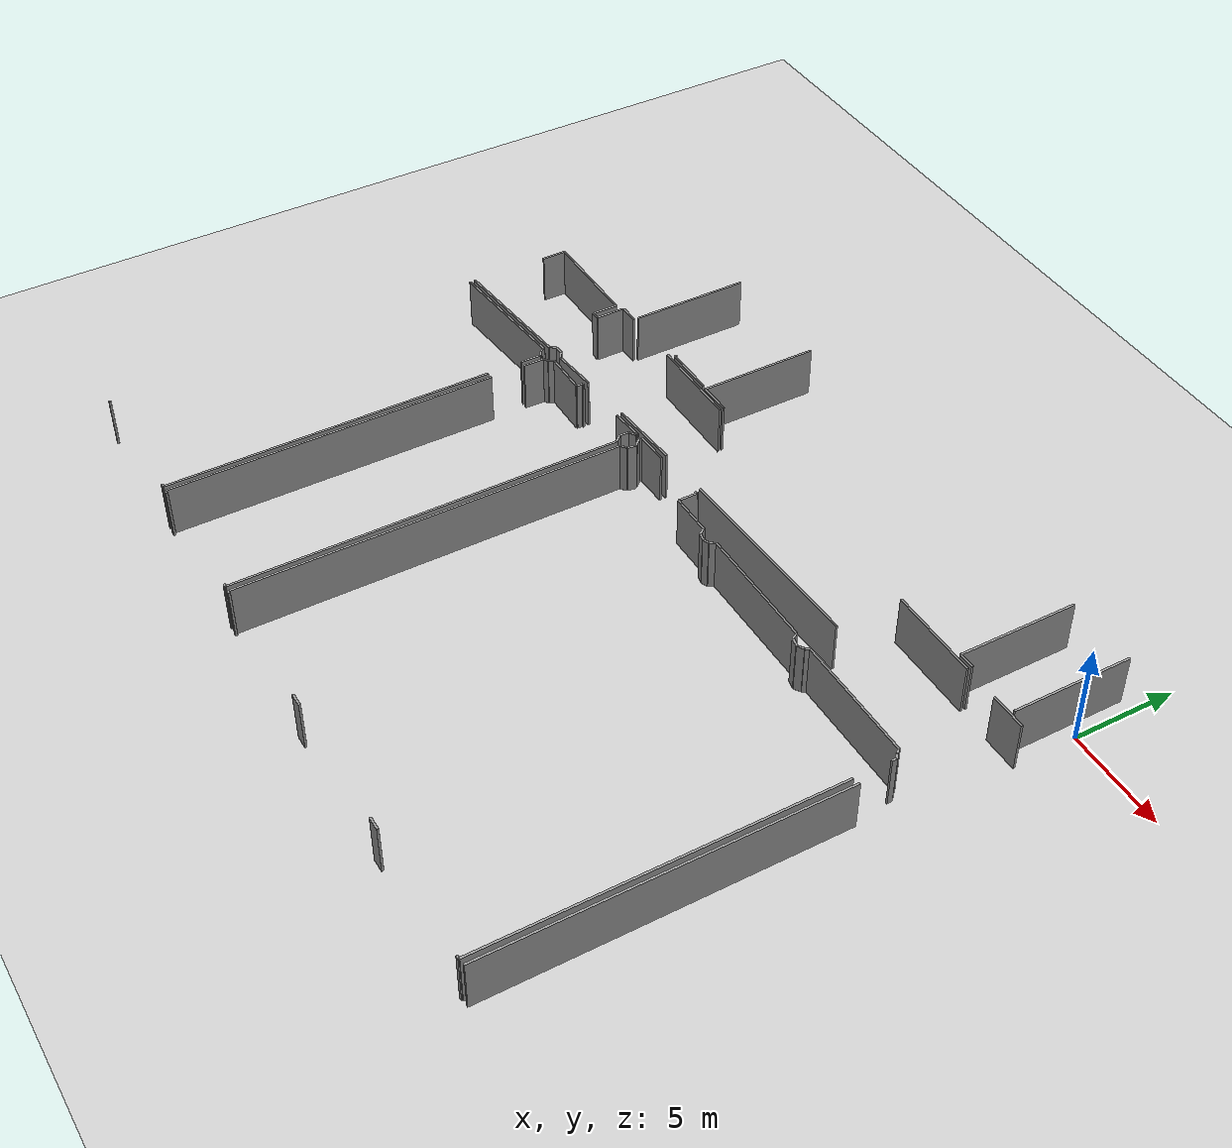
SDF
<sdf version="1.6">
 <world name="default">
  <model name="ground_plane">
   <static>1</static>
   <link name="link">
    <collision name="collision">
     <geometry><plane><normal>0 0 1</normal><size>100 100</size></plane></geometry>
     <surface><friction><ode><mu>100</mu><mu2>50</mu2></ode></friction></surface>
    </collision>
    <visual name="visual">
     <cast_shadows>0</cast_shadows>
     <geometry><plane><normal>0 0 1</normal><size>100 100</size></plane></geometry>
     <material>
      <script><uri>file://media/materials/scripts/gazebo.material</uri><name>Gazebo/Grey</name></script>
     </material>
    </visual>
   </link>
  </model>
  <model name="50041170">
   <static>1</static>
   <link name="Wall_257">
    <collision name="Wall_257_Collision">
     <geometry><box><size>0.410269429723 0.1 2.5</size></box></geometry>
     <pose>0.205134714861 0 1.25 0 0 0</pose>
    </collision>
    <visual name="Wall_257_Visual">
     <pose>0.205134714861 0 1.25 0 0 0</pose>
     <geometry><box><size>0.410269429723 0.1 2.5</size></box></geometry>
     <material>
      <script><uri>file://media/materials/scripts/gazebo.material</uri><name>Gazebo/Grey</name></script>
      <ambient>1 1 1 1</ambient>
     </material>
    </visual>
    <pose>35.0351305893 -31.5176287646 0 0 0 0.0</pose>
   </link>
   <link name="Wall_258">
    <collision name="Wall_258_Collision">
     <geometry><box><size>1.439116499 0.1 2.5</size></box></geometry>
     <pose>0.7195582495 0 1.25 0 0 0</pose>
    </collision>
    <visual name="Wall_258_Visual">
     <pose>0.7195582495 0 1.25 0 0 0</pose>
     <geometry><box><size>1.439116499 0.1 2.5</size></box></geometry>
     <material>
      <script><uri>file://media/materials/scripts/gazebo.material</uri><name>Gazebo/Grey</name></script>
      <ambient>1 1 1 1</ambient>
     </material>
    </visual>
    <pose>35.445400019 -31.5176287646 0 0 0 1.57079632679</pose>
   </link>
   <link name="Wall_259">
    <collision name="Wall_259_Collision">
     <geometry><box><size>0.978198089556 0.1 2.5</size></box></geometry>
     <pose>0.489099044778 0 1.25 0 0 0</pose>
    </collision>
    <visual name="Wall_259_Visual">
     <pose>0.489099044778 0 1.25 0 0 0</pose>
     <geometry><box><size>0.978198089556 0.1 2.5</size></box></geometry>
     <material>
      <script><uri>file://media/materials/scripts/gazebo.material</uri><name>Gazebo/Grey</name></script>
      <ambient>1 1 1 1</ambient>
     </material>
    </visual>
    <pose>35.445400019 -30.0785122656 0 0 0 0.0</pose>
   </link>
   <link name="Wall_260">
    <collision name="Wall_260_Collision">
     <geometry><box><size>4.66478372632 0.1 2.5</size></box></geometry>
     <pose>2.33239186316 0 1.25 0 0 0</pose>
    </collision>
    <visual name="Wall_260_Visual">
     <pose>2.33239186316 0 1.25 0 0 0</pose>
     <geometry><box><size>4.66478372632 0.1 2.5</size></box></geometry>
     <material>
      <script><uri>file://media/materials/scripts/gazebo.material</uri><name>Gazebo/Grey</name></script>
      <ambient>1 1 1 1</ambient>
     </material>
    </visual>
    <pose>39.5836374599 -30.0785122656 0 0 0 0.0</pose>
   </link>
   <link name="Wall_261">
    <collision name="Wall_261_Collision">
     <geometry><box><size>4.55713877694 0.1 2.5</size></box></geometry>
     <pose>2.27856938847 0 1.25 0 0 0</pose>
    </collision>
    <visual name="Wall_261_Visual">
     <pose>2.27856938847 0 1.25 0 0 0</pose>
     <geometry><box><size>4.55713877694 0.1 2.5</size></box></geometry>
     <material>
      <script><uri>file://media/materials/scripts/gazebo.material</uri><name>Gazebo/Grey</name></script>
      <ambient>1 1 1 1</ambient>
     </material>
    </visual>
    <pose>58.4122369966 -30.0785122656 0 0 0 0.0</pose>
   </link>
   <link name="Wall_262">
    <collision name="Wall_262_Collision">
     <geometry><box><size>1.7671289391 0.1 2.5</size></box></geometry>
     <pose>0.88356446955 0 1.25 0 0 0</pose>
    </collision>
    <visual name="Wall_262_Visual">
     <pose>0.88356446955 0 1.25 0 0 0</pose>
     <geometry><box><size>1.7671289391 0.1 2.5</size></box></geometry>
     <material>
      <script><uri>file://media/materials/scripts/gazebo.material</uri><name>Gazebo/Grey</name></script>
      <ambient>1 1 1 1</ambient>
     </material>
    </visual>
    <pose>64.7291422043 -30.0785122656 0 0 0 0.0</pose>
   </link>
   <link name="Wall_278">
    <collision name="Wall_278_Collision">
     <geometry><box><size>9.99468395729 0.1 2.5</size></box></geometry>
     <pose>4.99734197864 0 1.25 0 0 0</pose>
    </collision>
    <visual name="Wall_278_Visual">
     <pose>4.99734197864 0 1.25 0 0 0</pose>
     <geometry><box><size>9.99468395729 0.1 2.5</size></box></geometry>
     <material>
      <script><uri>file://media/materials/scripts/gazebo.material</uri><name>Gazebo/Grey</name></script>
      <ambient>1 1 1 1</ambient>
     </material>
    </visual>
    <pose>58.3976389197 -33.2614007807 0 0 0 -3.09776109586</pose>
   </link>
   <link name="Wall_279">
    <collision name="Wall_279_Collision">
     <geometry><box><size>3.58961421551 0.1 2.5</size></box></geometry>
     <pose>1.79480710776 0 1.25 0 0 0</pose>
    </collision>
    <visual name="Wall_279_Visual">
     <pose>1.79480710776 0 1.25 0 0 0</pose>
     <geometry><box><size>3.58961421551 0.1 2.5</size></box></geometry>
     <material>
      <script><uri>file://media/materials/scripts/gazebo.material</uri><name>Gazebo/Grey</name></script>
      <ambient>1 1 1 1</ambient>
     </material>
    </visual>
    <pose>45.7944209958 -33.8167624004 0 0 0 -3.06726176642</pose>
   </link>
   <link name="Wall_280">
    <collision name="Wall_280_Collision">
     <geometry><box><size>2.30417107276 0.1 2.5</size></box></geometry>
     <pose>1.15208553638 0 1.25 0 0 0</pose>
    </collision>
    <visual name="Wall_280_Visual">
     <pose>1.15208553638 0 1.25 0 0 0</pose>
     <geometry><box><size>2.30417107276 0.1 2.5</size></box></geometry>
     <material>
      <script><uri>file://media/materials/scripts/gazebo.material</uri><name>Gazebo/Grey</name></script>
      <ambient>1 1 1 1</ambient>
     </material>
    </visual>
    <pose>39.5743708546 -34.3118276158 0 0 0 -3.04326155827</pose>
   </link>
   <link name="Wall_281">
    <collision name="Wall_281_Collision">
     <geometry><box><size>0.396578967902 0.1 2.5</size></box></geometry>
     <pose>0.198289483951 0 1.25 0 0 0</pose>
    </collision>
    <visual name="Wall_281_Visual">
     <pose>0.198289483951 0 1.25 0 0 0</pose>
     <geometry><box><size>0.396578967902 0.1 2.5</size></box></geometry>
     <material>
      <script><uri>file://media/materials/scripts/gazebo.material</uri><name>Gazebo/Grey</name></script>
      <ambient>1 1 1 1</ambient>
     </material>
    </visual>
    <pose>37.2813303291 -34.5380343372 0 0 0 2.53849752656</pose>
   </link>
   <link name="Wall_282">
    <collision name="Wall_282_Collision">
     <geometry><box><size>0.435590548628 0.1 2.5</size></box></geometry>
     <pose>0.217795274314 0 1.25 0 0 0</pose>
    </collision>
    <visual name="Wall_282_Visual">
     <pose>0.217795274314 0 1.25 0 0 0</pose>
     <geometry><box><size>0.435590548628 0.1 2.5</size></box></geometry>
     <material>
      <script><uri>file://media/materials/scripts/gazebo.material</uri><name>Gazebo/Grey</name></script>
      <ambient>1 1 1 1</ambient>
     </material>
    </visual>
    <pose>36.9547142268 -34.3130970137 0 0 0 -3.12498094946</pose>
   </link>
   <link name="Wall_283">
    <collision name="Wall_283_Collision">
     <geometry><box><size>0.354304623857 0.1 2.5</size></box></geometry>
     <pose>0.177152311929 0 1.25 0 0 0</pose>
    </collision>
    <visual name="Wall_283_Visual">
     <pose>0.177152311929 0 1.25 0 0 0</pose>
     <geometry><box><size>0.354304623857 0.1 2.5</size></box></geometry>
     <material>
      <script><uri>file://media/materials/scripts/gazebo.material</uri><name>Gazebo/Grey</name></script>
      <ambient>1 1 1 1</ambient>
     </material>
    </visual>
    <pose>36.5191837771 -34.3203325823 0 0 0 -2.18125812917</pose>
   </link>
   <link name="Wall_284">
    <collision name="Wall_284_Collision">
     <geometry><box><size>6.53240830852 0.1 2.5</size></box></geometry>
     <pose>3.26620415426 0 1.25 0 0 0</pose>
    </collision>
    <visual name="Wall_284_Visual">
     <pose>3.26620415426 0 1.25 0 0 0</pose>
     <geometry><box><size>6.53240830852 0.1 2.5</size></box></geometry>
     <material>
      <script><uri>file://media/materials/scripts/gazebo.material</uri><name>Gazebo/Grey</name></script>
      <ambient>1 1 1 1</ambient>
     </material>
    </visual>
    <pose>36.316080099 -34.6106439021 0 0 0 -3.0472839309</pose>
   </link>
   <link name="Wall_308">
    <collision name="Wall_308_Collision">
     <geometry><box><size>16.7347275555 0.1 2.5</size></box></geometry>
     <pose>8.36736377773 0 1.25 0 0 0</pose>
    </collision>
    <visual name="Wall_308_Visual">
     <pose>8.36736377773 0 1.25 0 0 0</pose>
     <geometry><box><size>16.7347275555 0.1 2.5</size></box></geometry>
     <material>
      <script><uri>file://media/materials/scripts/gazebo.material</uri><name>Gazebo/Grey</name></script>
      <ambient>1 1 1 1</ambient>
     </material>
    </visual>
    <pose>65.7842658119 -53.9197105773 0 0 0 1.57079632679</pose>
   </link>
   <link name="Wall_332">
    <collision name="Wall_332_Collision">
     <geometry><box><size>0.163244581257 0.1 2.5</size></box></geometry>
     <pose>0.0816222906287 0 1.25 0 0 0</pose>
    </collision>
    <visual name="Wall_332_Visual">
     <pose>0.0816222906287 0 1.25 0 0 0</pose>
     <geometry><box><size>0.163244581257 0.1 2.5</size></box></geometry>
     <material>
      <script><uri>file://media/materials/scripts/gazebo.material</uri><name>Gazebo/Grey</name></script>
      <ambient>1 1 1 1</ambient>
     </material>
    </visual>
    <pose>65.4707245089 -53.9409095237 0 0 0 3.14159265359</pose>
   </link>
   <link name="Wall_333">
    <collision name="Wall_333_Collision">
     <geometry><box><size>0.64764685348 0.1 2.5</size></box></geometry>
     <pose>0.32382342674 0 1.25 0 0 0</pose>
    </collision>
    <visual name="Wall_333_Visual">
     <pose>0.32382342674 0 1.25 0 0 0</pose>
     <geometry><box><size>0.64764685348 0.1 2.5</size></box></geometry>
     <material>
      <script><uri>file://media/materials/scripts/gazebo.material</uri><name>Gazebo/Grey</name></script>
      <ambient>1 1 1 1</ambient>
     </material>
    </visual>
    <pose>58.7596712259 -53.9409095237 0 0 0 3.14159265359</pose>
   </link>
   <link name="Wall_334">
    <collision name="Wall_334_Collision">
     <geometry><box><size>0.639522706357 0.1 2.5</size></box></geometry>
     <pose>0.319761353178 0 1.25 0 0 0</pose>
    </collision>
    <visual name="Wall_334_Visual">
     <pose>0.319761353178 0 1.25 0 0 0</pose>
     <geometry><box><size>0.639522706357 0.1 2.5</size></box></geometry>
     <material>
      <script><uri>file://media/materials/scripts/gazebo.material</uri><name>Gazebo/Grey</name></script>
      <ambient>1 1 1 1</ambient>
     </material>
    </visual>
    <pose>51.5563454032 -53.9409095237 0 0 0 3.14159265359</pose>
   </link>
   <link name="Wall_335">
    <collision name="Wall_335_Collision">
     <geometry><box><size>0.148011805401 0.1 2.5</size></box></geometry>
     <pose>0.0740059027006 0 1.25 0 0 0</pose>
    </collision>
    <visual name="Wall_335_Visual">
     <pose>0.0740059027006 0 1.25 0 0 0</pose>
     <geometry><box><size>0.148011805401 0.1 2.5</size></box></geometry>
     <material>
      <script><uri>file://media/materials/scripts/gazebo.material</uri><name>Gazebo/Grey</name></script>
      <ambient>1 1 1 1</ambient>
     </material>
    </visual>
    <pose>44.337532925 -53.9409095237 0 0 0 3.14159265359</pose>
   </link>
   <link name="Wall_336">
    <collision name="Wall_336_Collision">
     <geometry><box><size>18.6619275808 0.1 2.5</size></box></geometry>
     <pose>9.33096379042 0 1.25 0 0 0</pose>
    </collision>
    <visual name="Wall_336_Visual">
     <pose>9.33096379042 0 1.25 0 0 0</pose>
     <geometry><box><size>18.6619275808 0.1 2.5</size></box></geometry>
     <material>
      <script><uri>file://media/materials/scripts/gazebo.material</uri><name>Gazebo/Grey</name></script>
      <ambient>1 1 1 1</ambient>
     </material>
    </visual>
    <pose>44.1895211196 -53.9409095237 0 0 0 1.57079632679</pose>
   </link>
   <link name="Wall_337">
    <collision name="Wall_337_Collision">
     <geometry><box><size>0.347628758682 0.1 2.5</size></box></geometry>
     <pose>0.173814379341 0 1.25 0 0 0</pose>
    </collision>
    <visual name="Wall_337_Visual">
     <pose>0.173814379341 0 1.25 0 0 0</pose>
     <geometry><box><size>0.347628758682 0.1 2.5</size></box></geometry>
     <material>
      <script><uri>file://media/materials/scripts/gazebo.material</uri><name>Gazebo/Grey</name></script>
      <ambient>1 1 1 1</ambient>
     </material>
    </visual>
    <pose>44.1895211196 -35.2789819428 0 0 0 0.663220977347</pose>
   </link>
   <link name="Wall_338">
    <collision name="Wall_338_Collision">
     <geometry><box><size>0.423180812426 0.1 2.5</size></box></geometry>
     <pose>0.211590406213 0 1.25 0 0 0</pose>
    </collision>
    <visual name="Wall_338_Visual">
     <pose>0.211590406213 0 1.25 0 0 0</pose>
     <geometry><box><size>0.423180812426 0.1 2.5</size></box></geometry>
     <material>
      <script><uri>file://media/materials/scripts/gazebo.material</uri><name>Gazebo/Grey</name></script>
      <ambient>1 1 1 1</ambient>
     </material>
    </visual>
    <pose>44.4634572054 -35.064961442 0 0 0 1.40140662539</pose>
   </link>
   <link name="Wall_339">
    <collision name="Wall_339_Collision">
     <geometry><box><size>0.488985039354 0.1 2.5</size></box></geometry>
     <pose>0.244492519677 0 1.25 0 0 0</pose>
    </collision>
    <visual name="Wall_339_Visual">
     <pose>0.244492519677 0 1.25 0 0 0</pose>
     <geometry><box><size>0.488985039354 0.1 2.5</size></box></geometry>
     <material>
      <script><uri>file://media/materials/scripts/gazebo.material</uri><name>Gazebo/Grey</name></script>
      <ambient>1 1 1 1</ambient>
     </material>
    </visual>
    <pose>44.5347973723 -34.6478372632 0 0 0 2.34022375346</pose>
   </link>
   <link name="Wall_340">
    <collision name="Wall_340_Collision">
     <geometry><box><size>0.148239273082 0.1 2.5</size></box></geometry>
     <pose>0.074119636541 0 1.25 0 0 0</pose>
    </collision>
    <visual name="Wall_340_Visual">
     <pose>0.074119636541 0 1.25 0 0 0</pose>
     <geometry><box><size>0.148239273082 0.1 2.5</size></box></geometry>
     <material>
      <script><uri>file://media/materials/scripts/gazebo.material</uri><name>Gazebo/Grey</name></script>
      <ambient>1 1 1 1</ambient>
     </material>
    </visual>
    <pose>44.1945987116 -34.2965948399 0 0 0 1.6076262804</pose>
   </link>
   <link name="Wall_341">
    <collision name="Wall_341_Collision">
     <geometry><box><size>1.61945895431 0.1 2.5</size></box></geometry>
     <pose>0.809729477154 0 1.25 0 0 0</pose>
    </collision>
    <visual name="Wall_341_Visual">
     <pose>0.809729477154 0 1.25 0 0 0</pose>
     <geometry><box><size>1.61945895431 0.1 2.5</size></box></geometry>
     <material>
      <script><uri>file://media/materials/scripts/gazebo.material</uri><name>Gazebo/Grey</name></script>
      <ambient>1 1 1 1</ambient>
     </material>
    </visual>
    <pose>44.1891403002 -34.1484560947 0 0 0 0.0271242172378</pose>
   </link>
   <link name="Wall_342">
    <collision name="Wall_342_Collision">
     <geometry><box><size>0.147399846667 0.1 2.5</size></box></geometry>
     <pose>0.0736999233334 0 1.25 0 0 0</pose>
    </collision>
    <visual name="Wall_342_Visual">
     <pose>0.0736999233334 0 1.25 0 0 0</pose>
     <geometry><box><size>0.147399846667 0.1 2.5</size></box></geometry>
     <material>
      <script><uri>file://media/materials/scripts/gazebo.material</uri><name>Gazebo/Grey</name></script>
      <ambient>1 1 1 1</ambient>
     </material>
    </visual>
    <pose>48.4715813525 -33.9852115134 0 0 0 0.172227704002</pose>
   </link>
   <link name="Wall_343">
    <collision name="Wall_343_Collision">
     <geometry><box><size>0.934023039573 0.1 2.5</size></box></geometry>
     <pose>0.467011519787 0 1.25 0 0 0</pose>
    </collision>
    <visual name="Wall_343_Visual">
     <pose>0.467011519787 0 1.25 0 0 0</pose>
     <geometry><box><size>0.934023039573 0.1 2.5</size></box></geometry>
     <material>
      <script><uri>file://media/materials/scripts/gazebo.material</uri><name>Gazebo/Grey</name></script>
      <ambient>1 1 1 1</ambient>
     </material>
    </visual>
    <pose>48.6168004824 -33.9599504935 0 0 0 -1.57079632679</pose>
   </link>
   <link name="Wall_344">
    <collision name="Wall_344_Collision">
     <geometry><box><size>2.10161530894 0.1 2.5</size></box></geometry>
     <pose>1.05080765447 0 1.25 0 0 0</pose>
    </collision>
    <visual name="Wall_344_Visual">
     <pose>1.05080765447 0 1.25 0 0 0</pose>
     <geometry><box><size>2.10161530894 0.1 2.5</size></box></geometry>
     <material>
      <script><uri>file://media/materials/scripts/gazebo.material</uri><name>Gazebo/Grey</name></script>
      <ambient>1 1 1 1</ambient>
     </material>
    </visual>
    <pose>48.6168004824 -34.8939735331 0 0 0 0.0</pose>
   </link>
   <link name="Wall_345">
    <collision name="Wall_345_Collision">
     <geometry><box><size>0.33784910002 0.1 2.5</size></box></geometry>
     <pose>0.16892455001 0 1.25 0 0 0</pose>
    </collision>
    <visual name="Wall_345_Visual">
     <pose>0.16892455001 0 1.25 0 0 0</pose>
     <geometry><box><size>0.33784910002 0.1 2.5</size></box></geometry>
     <material>
      <script><uri>file://media/materials/scripts/gazebo.material</uri><name>Gazebo/Grey</name></script>
      <ambient>1 1 1 1</ambient>
     </material>
    </visual>
    <pose>50.7184157913 -34.8939735331 0 0 0 -0.998217200498</pose>
   </link>
   <link name="Wall_346">
    <collision name="Wall_346_Collision">
     <geometry><box><size>0.410214753988 0.1 2.5</size></box></geometry>
     <pose>0.205107376994 0 1.25 0 0 0</pose>
    </collision>
    <visual name="Wall_346_Visual">
     <pose>0.205107376994 0 1.25 0 0 0</pose>
     <geometry><box><size>0.410214753988 0.1 2.5</size></box></geometry>
     <material>
      <script><uri>file://media/materials/scripts/gazebo.material</uri><name>Gazebo/Grey</name></script>
      <ambient>1 1 1 1</ambient>
     </material>
    </visual>
    <pose>50.9014629812 -35.177937863 0 0 0 -0.248881375225</pose>
   </link>
   <link name="Wall_347">
    <collision name="Wall_347_Collision">
     <geometry><box><size>0.302425752175 0.1 2.5</size></box></geometry>
     <pose>0.151212876087 0 1.25 0 0 0</pose>
    </collision>
    <visual name="Wall_347_Visual">
     <pose>0.151212876087 0 1.25 0 0 0</pose>
     <geometry><box><size>0.302425752175 0.1 2.5</size></box></geometry>
     <material>
      <script><uri>file://media/materials/scripts/gazebo.material</uri><name>Gazebo/Grey</name></script>
      <ambient>1 1 1 1</ambient>
     </material>
    </visual>
    <pose>51.299038431 -35.2789819428 0 0 0 0.407867967974</pose>
   </link>
   <link name="Wall_348">
    <collision name="Wall_348_Collision">
     <geometry><box><size>0.308460916307 0.1 2.5</size></box></geometry>
     <pose>0.154230458154 0 1.25 0 0 0</pose>
    </collision>
    <visual name="Wall_348_Visual">
     <pose>0.154230458154 0 1.25 0 0 0</pose>
     <geometry><box><size>0.308460916307 0.1 2.5</size></box></geometry>
     <material>
      <script><uri>file://media/materials/scripts/gazebo.material</uri><name>Gazebo/Grey</name></script>
      <ambient>1 1 1 1</ambient>
     </material>
    </visual>
    <pose>51.576655771 -35.1590238329 0 0 0 1.03383506667</pose>
   </link>
   <link name="Wall_349">
    <collision name="Wall_349_Collision">
     <geometry><box><size>6.18311065977 0.1 2.5</size></box></geometry>
     <pose>3.09155532988 0 1.25 0 0 0</pose>
    </collision>
    <visual name="Wall_349_Visual">
     <pose>3.09155532988 0 1.25 0 0 0</pose>
     <geometry><box><size>6.18311065977 0.1 2.5</size></box></geometry>
     <material>
      <script><uri>file://media/materials/scripts/gazebo.material</uri><name>Gazebo/Grey</name></script>
      <ambient>1 1 1 1</ambient>
     </material>
    </visual>
    <pose>51.7344419409 -34.8939735331 0 0 0 0.0</pose>
   </link>
   <link name="Wall_350">
    <collision name="Wall_350_Collision">
     <geometry><box><size>0.347568494271 0.1 2.5</size></box></geometry>
     <pose>0.173784247136 0 1.25 0 0 0</pose>
    </collision>
    <visual name="Wall_350_Visual">
     <pose>0.173784247136 0 1.25 0 0 0</pose>
     <geometry><box><size>0.347568494271 0.1 2.5</size></box></geometry>
     <material>
      <script><uri>file://media/materials/scripts/gazebo.material</uri><name>Gazebo/Grey</name></script>
      <ambient>1 1 1 1</ambient>
     </material>
    </visual>
    <pose>57.9175526007 -34.8939735331 0 0 0 -0.989276614597</pose>
   </link>
   <link name="Wall_351">
    <collision name="Wall_351_Collision">
     <geometry><box><size>0.409983971161 0.1 2.5</size></box></geometry>
     <pose>0.20499198558 0 1.25 0 0 0</pose>
    </collision>
    <visual name="Wall_351_Visual">
     <pose>0.20499198558 0 1.25 0 0 0</pose>
     <geometry><box><size>0.409983971161 0.1 2.5</size></box></geometry>
     <material>
      <script><uri>file://media/materials/scripts/gazebo.material</uri><name>Gazebo/Grey</name></script>
      <ambient>1 1 1 1</ambient>
     </material>
    </visual>
    <pose>58.1084700581 -35.1844117927 0 0 0 -0.211179832801</pose>
   </link>
   <link name="Wall_352">
    <collision name="Wall_352_Collision">
     <geometry><box><size>0.354710821474 0.1 2.5</size></box></geometry>
     <pose>0.177355410737 0 1.25 0 0 0</pose>
    </collision>
    <visual name="Wall_352_Visual">
     <pose>0.177355410737 0 1.25 0 0 0</pose>
     <geometry><box><size>0.354710821474 0.1 2.5</size></box></geometry>
     <material>
      <script><uri>file://media/materials/scripts/gazebo.material</uri><name>Gazebo/Grey</name></script>
      <ambient>1 1 1 1</ambient>
     </material>
    </visual>
    <pose>58.5093459427 -35.2703500365 0 0 0 0.58413165514</pose>
   </link>
   <link name="Wall_353">
    <collision name="Wall_353_Collision">
     <geometry><box><size>0.209163394737 0.1 2.5</size></box></geometry>
     <pose>0.104581697368 0 1.25 0 0 0</pose>
    </collision>
    <visual name="Wall_353_Visual">
     <pose>0.104581697368 0 1.25 0 0 0</pose>
     <geometry><box><size>0.209163394737 0.1 2.5</size></box></geometry>
     <material>
      <script><uri>file://media/materials/scripts/gazebo.material</uri><name>Gazebo/Grey</name></script>
      <ambient>1 1 1 1</ambient>
     </material>
    </visual>
    <pose>58.8052426137 -35.0747358065 0 0 0 0.964445614157</pose>
   </link>
   <link name="Wall_354">
    <collision name="Wall_354_Collision">
     <geometry><box><size>6.17079749929 0.1 2.5</size></box></geometry>
     <pose>3.08539874964 0 1.25 0 0 0</pose>
    </collision>
    <visual name="Wall_354_Visual">
     <pose>3.08539874964 0 1.25 0 0 0</pose>
     <geometry><box><size>6.17079749929 0.1 2.5</size></box></geometry>
     <material>
      <script><uri>file://media/materials/scripts/gazebo.material</uri><name>Gazebo/Grey</name></script>
      <ambient>1 1 1 1</ambient>
     </material>
    </visual>
    <pose>58.9244390848 -34.902859319 0 0 0 0.0</pose>
   </link>
   <link name="Wall_355">
    <collision name="Wall_355_Collision">
     <geometry><box><size>0.2553872596 0.1 2.5</size></box></geometry>
     <pose>0.1276936298 0 1.25 0 0 0</pose>
    </collision>
    <visual name="Wall_355_Visual">
     <pose>0.1276936298 0 1.25 0 0 0</pose>
     <geometry><box><size>0.2553872596 0.1 2.5</size></box></geometry>
     <material>
      <script><uri>file://media/materials/scripts/gazebo.material</uri><name>Gazebo/Grey</name></script>
      <ambient>1 1 1 1</ambient>
     </material>
    </visual>
    <pose>65.0952365841 -34.902859319 0 0 0 -0.936043379359</pose>
   </link>
   <link name="Wall_356">
    <collision name="Wall_356_Collision">
     <geometry><box><size>0.253930907829 0.1 2.5</size></box></geometry>
     <pose>0.126965453915 0 1.25 0 0 0</pose>
    </collision>
    <visual name="Wall_356_Visual">
     <pose>0.126965453915 0 1.25 0 0 0</pose>
     <geometry><box><size>0.253930907829 0.1 2.5</size></box></geometry>
     <material>
      <script><uri>file://media/materials/scripts/gazebo.material</uri><name>Gazebo/Grey</name></script>
      <ambient>1 1 1 1</ambient>
     </material>
    </visual>
    <pose>65.246675764 -35.108501793 0 0 0 -0.6088011572</pose>
   </link>
   <link name="Wall_357">
    <collision name="Wall_357_Collision">
     <geometry><box><size>0.239789279934 0.1 2.5</size></box></geometry>
     <pose>0.119894639967 0 1.25 0 0 0</pose>
    </collision>
    <visual name="Wall_357_Visual">
     <pose>0.119894639967 0 1.25 0 0 0</pose>
     <geometry><box><size>0.239789279934 0.1 2.5</size></box></geometry>
     <material>
      <script><uri>file://media/materials/scripts/gazebo.material</uri><name>Gazebo/Grey</name></script>
      <ambient>1 1 1 1</ambient>
     </material>
    </visual>
    <pose>65.4549839739 -35.2537209229 0 0 0 -1.57079632679</pose>
   </link>
   <link name="Wall_358">
    <collision name="Wall_358_Collision">
     <geometry><box><size>16.6614907268 0.1 2.5</size></box></geometry>
     <pose>8.3307453634 0 1.25 0 0 0</pose>
    </collision>
    <visual name="Wall_358_Visual">
     <pose>8.3307453634 0 1.25 0 0 0</pose>
     <geometry><box><size>16.6614907268 0.1 2.5</size></box></geometry>
     <material>
      <script><uri>file://media/materials/scripts/gazebo.material</uri><name>Gazebo/Grey</name></script>
      <ambient>1 1 1 1</ambient>
     </material>
    </visual>
    <pose>65.4549839739 -37.2794262321 0 0 0 -1.56985160116</pose>
   </link>
   <link name="Wall_359">
    <collision name="Wall_359_Collision">
     <geometry><box><size>0.166925835423 0.1 2.5</size></box></geometry>
     <pose>0.0834629177113 0 1.25 0 0 0</pose>
    </collision>
    <visual name="Wall_359_Visual">
     <pose>0.0834629177113 0 1.25 0 0 0</pose>
     <geometry><box><size>0.166925835423 0.1 2.5</size></box></geometry>
     <material>
      <script><uri>file://media/materials/scripts/gazebo.material</uri><name>Gazebo/Grey</name></script>
      <ambient>1 1 1 1</ambient>
     </material>
    </visual>
    <pose>43.8786455523 -53.923645711 0 0 0 3.14159265359</pose>
   </link>
   <link name="Wall_360">
    <collision name="Wall_360_Collision">
     <geometry><box><size>0.197518326933 0.1 2.5</size></box></geometry>
     <pose>0.0987591634667 0 1.25 0 0 0</pose>
    </collision>
    <visual name="Wall_360_Visual">
     <pose>0.0987591634667 0 1.25 0 0 0</pose>
     <geometry><box><size>0.197518326933 0.1 2.5</size></box></geometry>
     <material>
      <script><uri>file://media/materials/scripts/gazebo.material</uri><name>Gazebo/Grey</name></script>
      <ambient>1 1 1 1</ambient>
     </material>
    </visual>
    <pose>37.1754625369 -53.923645711 0 0 0 3.14159265359</pose>
   </link>
   <link name="Wall_361">
    <collision name="Wall_361_Collision">
     <geometry><box><size>15.9178699502 0.1 2.5</size></box></geometry>
     <pose>7.95893497509 0 1.25 0 0 0</pose>
    </collision>
    <visual name="Wall_361_Visual">
     <pose>7.95893497509 0 1.25 0 0 0</pose>
     <geometry><box><size>15.9178699502 0.1 2.5</size></box></geometry>
     <material>
      <script><uri>file://media/materials/scripts/gazebo.material</uri><name>Gazebo/Grey</name></script>
      <ambient>1 1 1 1</ambient>
     </material>
    </visual>
    <pose>36.97794421 -53.923645711 0 0 0 1.57079632679</pose>
   </link>
   <link name="Wall_362">
    <collision name="Wall_362_Collision">
     <geometry><box><size>1.01145631684 0.1 2.5</size></box></geometry>
     <pose>0.505728158421 0 1.25 0 0 0</pose>
    </collision>
    <visual name="Wall_362_Visual">
     <pose>0.505728158421 0 1.25 0 0 0</pose>
     <geometry><box><size>1.01145631684 0.1 2.5</size></box></geometry>
     <material>
      <script><uri>file://media/materials/scripts/gazebo.material</uri><name>Gazebo/Grey</name></script>
      <ambient>1 1 1 1</ambient>
     </material>
    </visual>
    <pose>36.97794421 -36.2970391292 0 0 0 1.57079632679</pose>
   </link>
   <link name="Wall_363">
    <collision name="Wall_363_Collision">
     <geometry><box><size>0.272665387692 0.1 2.5</size></box></geometry>
     <pose>0.136332693846 0 1.25 0 0 0</pose>
    </collision>
    <visual name="Wall_363_Visual">
     <pose>0.136332693846 0 1.25 0 0 0</pose>
     <geometry><box><size>0.272665387692 0.1 2.5</size></box></geometry>
     <material>
      <script><uri>file://media/materials/scripts/gazebo.material</uri><name>Gazebo/Grey</name></script>
      <ambient>1 1 1 1</ambient>
     </material>
    </visual>
    <pose>36.97794421 -35.2855828124 0 0 0 0.561658918903</pose>
   </link>
   <link name="Wall_364">
    <collision name="Wall_364_Collision">
     <geometry><box><size>0.285624194563 0.1 2.5</size></box></geometry>
     <pose>0.142812097281 0 1.25 0 0 0</pose>
    </collision>
    <visual name="Wall_364_Visual">
     <pose>0.142812097281 0 1.25 0 0 0</pose>
     <geometry><box><size>0.285624194563 0.1 2.5</size></box></geometry>
     <material>
      <script><uri>file://media/materials/scripts/gazebo.material</uri><name>Gazebo/Grey</name></script>
      <ambient>1 1 1 1</ambient>
     </material>
    </visual>
    <pose>37.2087207642 -35.1403636825 0 0 0 1.09581944702</pose>
   </link>
   <link name="Wall_365">
    <collision name="Wall_365_Collision">
     <geometry><box><size>2.16297649403 0.1 2.5</size></box></geometry>
     <pose>1.08148824702 0 1.25 0 0 0</pose>
    </collision>
    <visual name="Wall_365_Visual">
     <pose>1.08148824702 0 1.25 0 0 0</pose>
     <geometry><box><size>2.16297649403 0.1 2.5</size></box></geometry>
     <material>
      <script><uri>file://media/materials/scripts/gazebo.material</uri><name>Gazebo/Grey</name></script>
      <ambient>1 1 1 1</ambient>
     </material>
    </visual>
    <pose>37.3393418171 -34.8863571451 0 0 0 -0.00674911989481</pose>
   </link>
   <link name="Wall_366">
    <collision name="Wall_366_Collision">
     <geometry><box><size>0.29872238794 0.1 2.5</size></box></geometry>
     <pose>0.14936119397 0 1.25 0 0 0</pose>
    </collision>
    <visual name="Wall_366_Visual">
     <pose>0.14936119397 0 1.25 0 0 0</pose>
     <geometry><box><size>0.29872238794 0.1 2.5</size></box></geometry>
     <material>
      <script><uri>file://media/materials/scripts/gazebo.material</uri><name>Gazebo/Grey</name></script>
      <ambient>1 1 1 1</ambient>
     </material>
    </visual>
    <pose>39.5022690489 -34.900955222 0 0 0 1.55592279554</pose>
   </link>
   <link name="Wall_367">
    <collision name="Wall_367_Collision">
     <geometry><box><size>0.115394700727 0.1 2.5</size></box></geometry>
     <pose>0.0576973503635 0 1.25 0 0 0</pose>
    </collision>
    <visual name="Wall_367_Visual">
     <pose>0.0576973503635 0 1.25 0 0 0</pose>
     <geometry><box><size>0.115394700727 0.1 2.5</size></box></geometry>
     <material>
      <script><uri>file://media/materials/scripts/gazebo.material</uri><name>Gazebo/Grey</name></script>
      <ambient>1 1 1 1</ambient>
     </material>
    </visual>
    <pose>39.5067119419 -34.6022658754 0 0 0 0.124627883065</pose>
   </link>
   <link name="Wall_368">
    <collision name="Wall_368_Collision">
     <geometry><box><size>1.61122809962 0.1 2.5</size></box></geometry>
     <pose>0.805614049808 0 1.25 0 0 0</pose>
    </collision>
    <visual name="Wall_368_Visual">
     <pose>0.805614049808 0 1.25 0 0 0</pose>
     <geometry><box><size>1.61122809962 0.1 2.5</size></box></geometry>
     <material>
      <script><uri>file://media/materials/scripts/gazebo.material</uri><name>Gazebo/Grey</name></script>
      <ambient>1 1 1 1</ambient>
     </material>
    </visual>
    <pose>42.2673986862 -34.3420392879 0 0 0 0.094682804812</pose>
   </link>
   <link name="Wall_369">
    <collision name="Wall_369_Collision">
     <geometry><box><size>0.0870807019771 0.1 2.5</size></box></geometry>
     <pose>0.0435403509885 0 1.25 0 0 0</pose>
    </collision>
    <visual name="Wall_369_Visual">
     <pose>0.0435403509885 0 1.25 0 0 0</pose>
     <geometry><box><size>0.0870807019771 0.1 2.5</size></box></geometry>
     <material>
      <script><uri>file://media/materials/scripts/gazebo.material</uri><name>Gazebo/Grey</name></script>
      <ambient>1 1 1 1</ambient>
     </material>
    </visual>
    <pose>43.8714099838 -34.1897115293 0 0 0 -1.57079632679</pose>
   </link>
   <link name="Wall_370">
    <collision name="Wall_370_Collision">
     <geometry><box><size>0.362870109739 0.1 2.5</size></box></geometry>
     <pose>0.181435054869 0 1.25 0 0 0</pose>
    </collision>
    <visual name="Wall_370_Visual">
     <pose>0.181435054869 0 1.25 0 0 0</pose>
     <geometry><box><size>0.362870109739 0.1 2.5</size></box></geometry>
     <material>
      <script><uri>file://media/materials/scripts/gazebo.material</uri><name>Gazebo/Grey</name></script>
      <ambient>1 1 1 1</ambient>
     </material>
    </visual>
    <pose>43.8714099838 -34.2767922313 0 0 0 -2.49816150911</pose>
   </link>
   <link name="Wall_371">
    <collision name="Wall_371_Collision">
     <geometry><box><size>0.421934925893 0.1 2.5</size></box></geometry>
     <pose>0.210967462946 0 1.25 0 0 0</pose>
    </collision>
    <visual name="Wall_371_Visual">
     <pose>0.210967462946 0 1.25 0 0 0</pose>
     <geometry><box><size>0.421934925893 0.1 2.5</size></box></geometry>
     <material>
      <script><uri>file://media/materials/scripts/gazebo.material</uri><name>Gazebo/Grey</name></script>
      <ambient>1 1 1 1</ambient>
     </material>
    </visual>
    <pose>43.581098664 -34.4944939862 0 0 0 -1.63974596258</pose>
   </link>
   <link name="Wall_372">
    <collision name="Wall_372_Collision">
     <geometry><box><size>0.441913776972 0.1 2.5</size></box></geometry>
     <pose>0.220956888486 0 1.25 0 0 0</pose>
    </collision>
    <visual name="Wall_372_Visual">
     <pose>0.220956888486 0 1.25 0 0 0</pose>
     <geometry><box><size>0.441913776972 0.1 2.5</size></box></geometry>
     <material>
      <script><uri>file://media/materials/scripts/gazebo.material</uri><name>Gazebo/Grey</name></script>
      <ambient>1 1 1 1</ambient>
     </material>
    </visual>
    <pose>43.55202945 -34.915426359 0 0 0 -0.831725301497</pose>
   </link>
   <link name="Wall_373">
    <collision name="Wall_373_Collision">
     <geometry><box><size>18.6816256689 0.1 2.5</size></box></geometry>
     <pose>9.34081283445 0 1.25 0 0 0</pose>
    </collision>
    <visual name="Wall_373_Visual">
     <pose>9.34081283445 0 1.25 0 0 0</pose>
     <geometry><box><size>18.6816256689 0.1 2.5</size></box></geometry>
     <material>
      <script><uri>file://media/materials/scripts/gazebo.material</uri><name>Gazebo/Grey</name></script>
      <ambient>1 1 1 1</ambient>
     </material>
    </visual>
    <pose>43.8497032782 -35.2420424614 0 0 0 -1.56924708872</pose>
   </link>
   <link name="Wall_374">
    <collision name="Wall_374_Collision">
     <geometry><box><size>0.170099330393 0.1 2.5</size></box></geometry>
     <pose>0.0850496651963 0 1.25 0 0 0</pose>
    </collision>
    <visual name="Wall_374_Visual">
     <pose>0.0850496651963 0 1.25 0 0 0</pose>
     <geometry><box><size>0.170099330393 0.1 2.5</size></box></geometry>
     <material>
      <script><uri>file://media/materials/scripts/gazebo.material</uri><name>Gazebo/Grey</name></script>
      <ambient>1 1 1 1</ambient>
     </material>
    </visual>
    <pose>36.6760813684 -53.8940687379 0 0 0 3.14159265359</pose>
   </link>
   <link name="Wall_375">
    <collision name="Wall_375_Collision">
     <geometry><box><size>0.0798451334455 0.1 2.5</size></box></geometry>
     <pose>0.0399225667227 0 1.25 0 0 0</pose>
    </collision>
    <visual name="Wall_375_Visual">
     <pose>0.0399225667227 0 1.25 0 0 0</pose>
     <geometry><box><size>0.0798451334455 0.1 2.5</size></box></geometry>
     <material>
      <script><uri>file://media/materials/scripts/gazebo.material</uri><name>Gazebo/Grey</name></script>
      <ambient>1 1 1 1</ambient>
     </material>
    </visual>
    <pose>29.9509377678 -53.8940687379 0 0 0 3.14159265359</pose>
   </link>
   <link name="Wall_377">
    <collision name="Wall_377_Collision">
     <geometry><box><size>6.46220676422 0.1 2.5</size></box></geometry>
     <pose>3.23110338211 0 1.25 0 0 0</pose>
    </collision>
    <visual name="Wall_377_Visual">
     <pose>3.23110338211 0 1.25 0 0 0</pose>
     <geometry><box><size>6.46220676422 0.1 2.5</size></box></geometry>
     <material>
      <script><uri>file://media/materials/scripts/gazebo.material</uri><name>Gazebo/Grey</name></script>
      <ambient>1 1 1 1</ambient>
     </material>
    </visual>
    <pose>29.8710926343 -35.4815778617 0 0 0 0.0935605123678</pose>
   </link>
   <link name="Wall_378">
    <collision name="Wall_378_Collision">
     <geometry><box><size>0.256092321736 0.1 2.5</size></box></geometry>
     <pose>0.128046160868 0 1.25 0 0 0</pose>
    </collision>
    <visual name="Wall_378_Visual">
     <pose>0.128046160868 0 1.25 0 0 0</pose>
     <geometry><box><size>0.256092321736 0.1 2.5</size></box></geometry>
     <material>
      <script><uri>file://media/materials/scripts/gazebo.material</uri><name>Gazebo/Grey</name></script>
      <ambient>1 1 1 1</ambient>
     </material>
    </visual>
    <pose>36.3050363365 -34.8778521786 0 0 0 -1.100055066</pose>
   </link>
   <link name="Wall_379">
    <collision name="Wall_379_Collision">
     <geometry><box><size>0.298150242575 0.1 2.5</size></box></geometry>
     <pose>0.149075121287 0 1.25 0 0 0</pose>
    </collision>
    <visual name="Wall_379_Visual">
     <pose>0.149075121287 0 1.25 0 0 0</pose>
     <geometry><box><size>0.298150242575 0.1 2.5</size></box></geometry>
     <material>
      <script><uri>file://media/materials/scripts/gazebo.material</uri><name>Gazebo/Grey</name></script>
      <ambient>1 1 1 1</ambient>
     </material>
    </visual>
    <pose>36.4211862524 -35.1060899368 0 0 0 -0.607133374334</pose>
   </link>
   <link name="Wall_380">
    <collision name="Wall_380_Collision">
     <geometry><box><size>1.01259877503 0.1 2.5</size></box></geometry>
     <pose>0.506299387515 0 1.25 0 0 0</pose>
    </collision>
    <visual name="Wall_380_Visual">
     <pose>0.506299387515 0 1.25 0 0 0</pose>
     <geometry><box><size>1.01259877503 0.1 2.5</size></box></geometry>
     <material>
      <script><uri>file://media/materials/scripts/gazebo.material</uri><name>Gazebo/Grey</name></script>
      <ambient>1 1 1 1</ambient>
     </material>
    </visual>
    <pose>36.6660531243 -35.2761892672 0 0 0 -1.57079632679</pose>
   </link>
   <link name="Wall_381">
    <collision name="Wall_381_Collision">
     <geometry><box><size>15.8828377316 0.1 2.5</size></box></geometry>
     <pose>7.94141886578 0 1.25 0 0 0</pose>
    </collision>
    <visual name="Wall_381_Visual">
     <pose>7.94141886578 0 1.25 0 0 0</pose>
     <geometry><box><size>15.8828377316 0.1 2.5</size></box></geometry>
     <material>
      <script><uri>file://media/materials/scripts/gazebo.material</uri><name>Gazebo/Grey</name></script>
      <ambient>1 1 1 1</ambient>
     </material>
    </visual>
    <pose>36.6660531243 -38.0112341722 0 0 0 -1.57016493806</pose>
   </link>
   <link name="Wall_382">
    <collision name="Wall_382_Collision">
     <geometry><box><size>1.18853733617 0.1 2.5</size></box></geometry>
     <pose>0.594268668084 0 1.25 0 0 0</pose>
    </collision>
    <visual name="Wall_382_Visual">
     <pose>0.594268668084 0 1.25 0 0 0</pose>
     <geometry><box><size>1.18853733617 0.1 2.5</size></box></geometry>
     <material>
      <script><uri>file://media/materials/scripts/gazebo.material</uri><name>Gazebo/Grey</name></script>
      <ambient>1 1 1 1</ambient>
     </material>
    </visual>
    <pose>29.909174574 -31.4709149186 0 0 0 1.57079632679</pose>
   </link>
   <link name="Wall_383">
    <collision name="Wall_383_Collision">
     <geometry><box><size>5.15121703532 0.1 2.5</size></box></geometry>
     <pose>2.57560851766 0 1.25 0 0 0</pose>
    </collision>
    <visual name="Wall_383_Visual">
     <pose>2.57560851766 0 1.25 0 0 0</pose>
     <geometry><box><size>5.15121703532 0.1 2.5</size></box></geometry>
     <material>
      <script><uri>file://media/materials/scripts/gazebo.material</uri><name>Gazebo/Grey</name></script>
      <ambient>1 1 1 1</ambient>
     </material>
    </visual>
    <pose>29.909174574 -30.2823775824 0 0 0 0.0</pose>
   </link>
   <link name="Wall_384">
    <collision name="Wall_384_Collision">
     <geometry><box><size>1.18855936028 0.1 2.5</size></box></geometry>
     <pose>0.594279680142 0 1.25 0 0 0</pose>
    </collision>
    <visual name="Wall_384_Visual">
     <pose>0.594279680142 0 1.25 0 0 0</pose>
     <geometry><box><size>1.18855936028 0.1 2.5</size></box></geometry>
     <material>
      <script><uri>file://media/materials/scripts/gazebo.material</uri><name>Gazebo/Grey</name></script>
      <ambient>1 1 1 1</ambient>
     </material>
    </visual>
    <pose>35.0603916093 -30.2823775824 0 0 0 -1.57688404396</pose>
   </link>
   <link name="Wall_385">
    <collision name="Wall_385_Collision">
     <geometry><box><size>5.78134619657 0.1 2.5</size></box></geometry>
     <pose>2.89067309828 0 1.25 0 0 0</pose>
    </collision>
    <visual name="Wall_385_Visual">
     <pose>2.89067309828 0 1.25 0 0 0</pose>
     <geometry><box><size>5.78134619657 0.1 2.5</size></box></geometry>
     <material>
      <script><uri>file://media/materials/scripts/gazebo.material</uri><name>Gazebo/Grey</name></script>
      <ambient>1 1 1 1</ambient>
     </material>
    </visual>
    <pose>36.4421313192 -29.8680460791 0 0 0 1.57079632679</pose>
   </link>
   <link name="Wall_394">
    <collision name="Wall_394_Collision">
     <geometry><box><size>2.56227983879 0.1 2.5</size></box></geometry>
     <pose>1.28113991939 0 1.25 0 0 0</pose>
    </collision>
    <visual name="Wall_394_Visual">
     <pose>1.28113991939 0 1.25 0 0 0</pose>
     <geometry><box><size>2.56227983879 0.1 2.5</size></box></geometry>
     <material>
      <script><uri>file://media/materials/scripts/gazebo.material</uri><name>Gazebo/Grey</name></script>
      <ambient>1 1 1 1</ambient>
     </material>
    </visual>
    <pose>42.4128716956 -29.8450699756 0 0 0 3.14159265359</pose>
   </link>
   <link name="Wall_395">
    <collision name="Wall_395_Collision">
     <geometry><box><size>0.101044079845 0.1 2.5</size></box></geometry>
     <pose>0.0505220399226 0 1.25 0 0 0</pose>
    </collision>
    <visual name="Wall_395_Visual">
     <pose>0.0505220399226 0 1.25 0 0 0</pose>
     <geometry><box><size>0.101044079845 0.1 2.5</size></box></geometry>
     <material>
      <script><uri>file://media/materials/scripts/gazebo.material</uri><name>Gazebo/Grey</name></script>
      <ambient>1 1 1 1</ambient>
     </material>
    </visual>
    <pose>39.8505918568 -29.8450699756 0 0 0 1.57079632679</pose>
   </link>
   <link name="Wall_399">
    <collision name="Wall_399_Collision">
     <geometry><box><size>1.57849639808 0.1 2.5</size></box></geometry>
     <pose>0.789248199042 0 1.25 0 0 0</pose>
    </collision>
    <visual name="Wall_399_Visual">
     <pose>0.789248199042 0 1.25 0 0 0</pose>
     <geometry><box><size>1.57849639808 0.1 2.5</size></box></geometry>
     <material>
      <script><uri>file://media/materials/scripts/gazebo.material</uri><name>Gazebo/Grey</name></script>
      <ambient>1 1 1 1</ambient>
     </material>
    </visual>
    <pose>44.2187172733 -29.8816286376 0 0 0 3.14159265359</pose>
   </link>
   <link name="Wall_400">
    <collision name="Wall_400_Collision">
     <geometry><box><size>5.78756624671 0.1 2.5</size></box></geometry>
     <pose>2.89378312335 0 1.25 0 0 0</pose>
    </collision>
    <visual name="Wall_400_Visual">
     <pose>2.89378312335 0 1.25 0 0 0</pose>
     <geometry><box><size>5.78756624671 0.1 2.5</size></box></geometry>
     <material>
      <script><uri>file://media/materials/scripts/gazebo.material</uri><name>Gazebo/Grey</name></script>
      <ambient>1 1 1 1</ambient>
     </material>
    </visual>
    <pose>42.6402208752 -29.8816286376 0 0 0 1.57079632679</pose>
   </link>
   <link name="Wall_409">
    <collision name="Wall_409_Collision">
     <geometry><box><size>0.773698073689 0.1 2.5</size></box></geometry>
     <pose>0.386849036844 0 1.25 0 0 0</pose>
    </collision>
    <visual name="Wall_409_Visual">
     <pose>0.386849036844 0 1.25 0 0 0</pose>
     <geometry><box><size>0.773698073689 0.1 2.5</size></box></geometry>
     <material>
      <script><uri>file://media/materials/scripts/gazebo.material</uri><name>Gazebo/Grey</name></script>
      <ambient>1 1 1 1</ambient>
     </material>
    </visual>
    <pose>62.9668369776 -29.8399923836 0 0 0 3.14159265359</pose>
   </link>
   <link name="Wall_410">
    <collision name="Wall_410_Collision">
     <geometry><box><size>5.75989337057 0.1 2.5</size></box></geometry>
     <pose>2.87994668528 0 1.25 0 0 0</pose>
    </collision>
    <visual name="Wall_410_Visual">
     <pose>2.87994668528 0 1.25 0 0 0</pose>
     <geometry><box><size>5.75989337057 0.1 2.5</size></box></geometry>
     <material>
      <script><uri>file://media/materials/scripts/gazebo.material</uri><name>Gazebo/Grey</name></script>
      <ambient>1 1 1 1</ambient>
     </material>
    </visual>
    <pose>62.1931389039 -29.8399923836 0 0 0 1.57079632679</pose>
   </link>
   <link name="Wall_415">
    <collision name="Wall_415_Collision">
     <geometry><box><size>5.76915997588 0.1 2.5</size></box></geometry>
     <pose>2.88457998794 0 1.25 0 0 0</pose>
    </collision>
    <visual name="Wall_415_Visual">
     <pose>2.88457998794 0 1.25 0 0 0</pose>
     <geometry><box><size>5.76915997588 0.1 2.5</size></box></geometry>
     <material>
      <script><uri>file://media/materials/scripts/gazebo.material</uri><name>Gazebo/Grey</name></script>
      <ambient>1 1 1 1</ambient>
     </material>
    </visual>
    <pose>65.7211767319 -29.8583986544 0 0 0 1.57079632679</pose>
   </link>
   <pose>-66.45 26.9909095237 0 0 0 0</pose>
  </model>
 </world>
</sdf>
